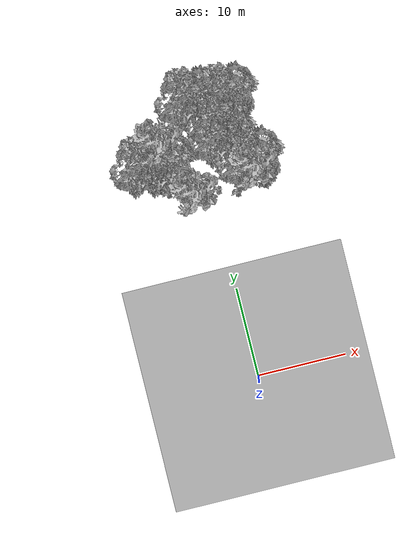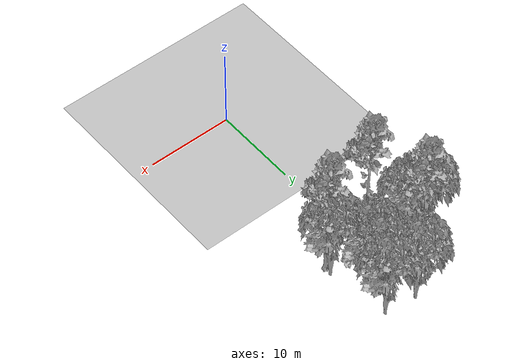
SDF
<sdf version="1.7">
 <world name="default">
  <model name="ground_plane">
   <static>1</static>
   <link name="link">
    <collision name="collision">
     <pose>-50 0 0 0 -0 0</pose>
     <geometry><plane><normal>0 0 1</normal><size>80 80</size></plane></geometry>
     <surface><contact><ode><min_depth>0.01</min_depth><max_vel>0</max_vel></ode></contact></surface>
    </collision>
    <visual name="grass">
     <cast_shadows>0</cast_shadows>
     <geometry>
      <mesh>
       <scale>0.46714285714285714 0.46714285714285714 0.1</scale>
       <uri>file://grass_plane/meshes/grass_plane.dae</uri>
      </mesh>
     </geometry>
    </visual>
   </link>
  </model>
  <model name="Tree 5">
   <static>1</static>
   <pose>2.541199263562561 26.002486133638797 0 1.57079 -0 0</pose>
   <link name="link">
    <collision name="collision">
     <geometry><mesh><scale>3.5 5 3.5</scale><uri>model://tree_2/meshes/tree_2.obj</uri></mesh></geometry>
    </collision>
    <visual name="visual">
     <geometry><mesh><scale>3.5 5 3.5</scale><uri>model://tree_2/meshes/tree_2.obj</uri></mesh></geometry>
    </visual>
   </link>
  </model>
  <model name="Tree 65">
   <static>1</static>
   <pose>-4.063070890270268 26.344671352374874 0 1.57079 -0 0</pose>
   <link name="link">
    <collision name="collision">
     <geometry><mesh><scale>3.5 5 3.5</scale><uri>model://tree_9/meshes/tree_9.obj</uri></mesh></geometry>
    </collision>
    <visual name="visual">
     <geometry><mesh><scale>3.5 5 3.5</scale><uri>model://tree_9/meshes/tree_9.obj</uri></mesh></geometry>
    </visual>
   </link>
  </model>
  <model name="Tree 167">
   <static>1</static>
   <pose>3.7886696312940416 30.106309077595185 0 1.57079 -0 0</pose>
   <link name="link">
    <collision name="collision">
     <geometry><mesh><scale>3.5 5 3.5</scale><uri>model://tree_2/meshes/tree_2.obj</uri></mesh></geometry>
    </collision>
    <visual name="visual">
     <geometry><mesh><scale>3.5 5 3.5</scale><uri>model://tree_2/meshes/tree_2.obj</uri></mesh></geometry>
    </visual>
   </link>
  </model>
  <model name="Tree 181">
   <static>1</static>
   <pose>2.614174558890447 27.958032820090295 0 1.57079 -0 0</pose>
   <link name="link">
    <collision name="collision">
     <geometry><mesh><scale>3.5 5 3.5</scale><uri>model://tree_2/meshes/tree_2.obj</uri></mesh></geometry>
    </collision>
    <visual name="visual">
     <geometry><mesh><scale>3.5 5 3.5</scale><uri>model://tree_2/meshes/tree_2.obj</uri></mesh></geometry>
    </visual>
   </link>
  </model>
  <model name="Tree 183">
   <static>1</static>
   <pose>0.12396597526274888 30.573091209536415 0 1.57079 -0 0</pose>
   <link name="link">
    <collision name="collision">
     <geometry><mesh><scale>3.5 5 3.5</scale><uri>model://tree_2/meshes/tree_2.obj</uri></mesh></geometry>
    </collision>
    <visual name="visual">
     <geometry><mesh><scale>3.5 5 3.5</scale><uri>model://tree_2/meshes/tree_2.obj</uri></mesh></geometry>
    </visual>
   </link>
  </model>
  <model name="Tree 186">
   <static>1</static>
   <pose>-6.068906211879714 24.888237485663723 0 1.57079 -0 0</pose>
   <link name="link">
    <collision name="collision">
     <geometry><mesh><scale>3.5 5 3.5</scale><uri>model://tree_2/meshes/tree_2.obj</uri></mesh></geometry>
    </collision>
    <visual name="visual">
     <geometry><mesh><scale>3.5 5 3.5</scale><uri>model://tree_2/meshes/tree_2.obj</uri></mesh></geometry>
    </visual>
   </link>
  </model>
  <model name="Tree 327">
   <static>1</static>
   <pose>4.597444722207847 21.828376051241534 0 1.57079 -0 0</pose>
   <link name="link">
    <collision name="collision">
     <geometry><mesh><scale>3.5 5 3.5</scale><uri>model://tree_9/meshes/tree_9.obj</uri></mesh></geometry>
    </collision>
    <visual name="visual">
     <geometry><mesh><scale>3.5 5 3.5</scale><uri>model://tree_9/meshes/tree_9.obj</uri></mesh></geometry>
    </visual>
   </link>
  </model>
  <model name="Tree 351">
   <static>1</static>
   <pose>-4.11728415330208 24.51464135056544 0 1.57079 -0 0</pose>
   <link name="link">
    <collision name="collision">
     <geometry><mesh><scale>3.5 5 3.5</scale><uri>model://tree_2/meshes/tree_2.obj</uri></mesh></geometry>
    </collision>
    <visual name="visual">
     <geometry><mesh><scale>3.5 5 3.5</scale><uri>model://tree_2/meshes/tree_2.obj</uri></mesh></geometry>
    </visual>
   </link>
  </model>
  <model name="Tree 506">
   <static>1</static>
   <pose>4.830327032825167 22.942880569228457 0 1.57079 -0 0</pose>
   <link name="link">
    <collision name="collision">
     <geometry><mesh><scale>3.5 5 3.5</scale><uri>model://tree_2/meshes/tree_2.obj</uri></mesh></geometry>
    </collision>
    <visual name="visual">
     <geometry><mesh><scale>3.5 5 3.5</scale><uri>model://tree_2/meshes/tree_2.obj</uri></mesh></geometry>
    </visual>
   </link>
  </model>
  <model name="Tree 555">
   <static>1</static>
   <pose>-1.7842016796451006 20.721535748117425 0 1.57079 -0 0</pose>
   <link name="link">
    <collision name="collision">
     <geometry><mesh><scale>3.5 5 3.5</scale><uri>model://tree_9/meshes/tree_9.obj</uri></mesh></geometry>
    </collision>
    <visual name="visual">
     <geometry><mesh><scale>3.5 5 3.5</scale><uri>model://tree_9/meshes/tree_9.obj</uri></mesh></geometry>
    </visual>
   </link>
  </model>
  <model name="Bush 7">
   <static>1</static>
   <pose>-4.5042462058485455 23.462716821325884 0 1.57079 -0 0</pose>
   <link name="link">
    <collision name="collision">
     <geometry><mesh><scale>2 2 2</scale><uri>model://bush_2/meshes/bush_2.obj</uri></mesh></geometry>
     <surface><contact><collide_without_contact>false</collide_without_contact></contact></surface>
    </collision>
    <visual name="visual">
     <geometry><mesh><scale>2 2 2</scale><uri>model://bush_2/meshes/bush_2.obj</uri></mesh></geometry>
    </visual>
   </link>
  </model>
  <model name="Bush 170">
   <static>1</static>
   <pose>-6.142239156432375 28.872120043894697 0 1.57079 -0 0</pose>
   <link name="link">
    <collision name="collision">
     <geometry><mesh><scale>2 2 2</scale><uri>model://bush_2/meshes/bush_2.obj</uri></mesh></geometry>
     <surface><contact><collide_without_contact>false</collide_without_contact></contact></surface>
    </collision>
    <visual name="visual">
     <geometry><mesh><scale>2 2 2</scale><uri>model://bush_2/meshes/bush_2.obj</uri></mesh></geometry>
    </visual>
   </link>
  </model>
  <model name="Bush 188">
   <static>1</static>
   <pose>0.5278341826342086 21.194731750973773 0 1.57079 -0 0</pose>
   <link name="link">
    <collision name="collision">
     <geometry><mesh><scale>2 2 2</scale><uri>model://bush_2/meshes/bush_2.obj</uri></mesh></geometry>
     <surface><contact><collide_without_contact>false</collide_without_contact></contact></surface>
    </collision>
    <visual name="visual">
     <geometry><mesh><scale>2 2 2</scale><uri>model://bush_2/meshes/bush_2.obj</uri></mesh></geometry>
    </visual>
   </link>
  </model>
  <model name="Bush 225">
   <static>1</static>
   <pose>-2.7805043515334873 21.481327434769348 0 1.57079 -0 0</pose>
   <link name="link">
    <collision name="collision">
     <geometry><mesh><scale>2 2 2</scale><uri>model://bush_2/meshes/bush_2.obj</uri></mesh></geometry>
     <surface><contact><collide_without_contact>false</collide_without_contact></contact></surface>
    </collision>
    <visual name="visual">
     <geometry><mesh><scale>2 2 2</scale><uri>model://bush_2/meshes/bush_2.obj</uri></mesh></geometry>
    </visual>
   </link>
  </model>
  <model name="Bush 284">
   <static>1</static>
   <pose>-5.4778696018289565 26.011223657302025 0 1.57079 -0 0</pose>
   <link name="link">
    <collision name="collision">
     <geometry><mesh><scale>2 2 2</scale><uri>model://bush_2/meshes/bush_2.obj</uri></mesh></geometry>
     <surface><contact><collide_without_contact>false</collide_without_contact></contact></surface>
    </collision>
    <visual name="visual">
     <geometry><mesh><scale>2 2 2</scale><uri>model://bush_2/meshes/bush_2.obj</uri></mesh></geometry>
    </visual>
   </link>
  </model>
  <model name="Bush 291">
   <static>1</static>
   <pose>-0.7575715153770446 20.85325771108684 0 1.57079 -0 0</pose>
   <link name="link">
    <collision name="collision">
     <geometry><mesh><scale>2 2 2</scale><uri>model://bush_2/meshes/bush_2.obj</uri></mesh></geometry>
     <surface><contact><collide_without_contact>false</collide_without_contact></contact></surface>
    </collision>
    <visual name="visual">
     <geometry><mesh><scale>2 2 2</scale><uri>model://bush_2/meshes/bush_2.obj</uri></mesh></geometry>
    </visual>
   </link>
  </model>
  <model name="Bush 334">
   <static>1</static>
   <pose>2.588542399221957 20.39256120691511 0 1.57079 -0 0</pose>
   <link name="link">
    <collision name="collision">
     <geometry><mesh><scale>2 2 2</scale><uri>model://bush_2/meshes/bush_2.obj</uri></mesh></geometry>
     <surface><contact><collide_without_contact>false</collide_without_contact></contact></surface>
    </collision>
    <visual name="visual">
     <geometry><mesh><scale>2 2 2</scale><uri>model://bush_2/meshes/bush_2.obj</uri></mesh></geometry>
    </visual>
   </link>
  </model>
  <model name="Bush 413">
   <static>1</static>
   <pose>-2.1728020979415135 29.884198276993857 0 1.57079 -0 0</pose>
   <link name="link">
    <collision name="collision">
     <geometry><mesh><scale>2 2 2</scale><uri>model://bush_5/meshes/bush_5.obj</uri></mesh></geometry>
     <surface><contact><collide_without_contact>false</collide_without_contact></contact></surface>
    </collision>
    <visual name="visual">
     <geometry><mesh><scale>2 2 2</scale><uri>model://bush_5/meshes/bush_5.obj</uri></mesh></geometry>
    </visual>
   </link>
  </model>
  <model name="Bush 457">
   <static>1</static>
   <pose>-2.8944011275539125 24.67074571103008 0 1.57079 -0 0</pose>
   <link name="link">
    <collision name="collision">
     <geometry><mesh><scale>2 2 2</scale><uri>model://bush_2/meshes/bush_2.obj</uri></mesh></geometry>
     <surface><contact><collide_without_contact>false</collide_without_contact></contact></surface>
    </collision>
    <visual name="visual">
     <geometry><mesh><scale>2 2 2</scale><uri>model://bush_2/meshes/bush_2.obj</uri></mesh></geometry>
    </visual>
   </link>
  </model>
  <model name="Bush 469">
   <static>1</static>
   <pose>2.71386371102799 23.120463519993933 0 1.57079 -0 0</pose>
   <link name="link">
    <collision name="collision">
     <geometry><mesh><scale>2 2 2</scale><uri>model://bush_1/meshes/bush_1.obj</uri></mesh></geometry>
     <surface><contact><collide_without_contact>false</collide_without_contact></contact></surface>
    </collision>
    <visual name="visual">
     <geometry><mesh><scale>2 2 2</scale><uri>model://bush_1/meshes/bush_1.obj</uri></mesh></geometry>
    </visual>
   </link>
  </model>
  <model name="Bush 500">
   <static>1</static>
   <pose>-3.8883910900649354 28.95575845882196 0 1.57079 -0 0</pose>
   <link name="link">
    <collision name="collision">
     <geometry><mesh><scale>2 2 2</scale><uri>model://bush_2/meshes/bush_2.obj</uri></mesh></geometry>
     <surface><contact><collide_without_contact>false</collide_without_contact></contact></surface>
    </collision>
    <visual name="visual">
     <geometry><mesh><scale>2 2 2</scale><uri>model://bush_2/meshes/bush_2.obj</uri></mesh></geometry>
    </visual>
   </link>
  </model>
  <model name="Bush 532">
   <static>1</static>
   <pose>-4.934083319994933 22.089124562974447 0 1.57079 -0 0</pose>
   <link name="link">
    <collision name="collision">
     <geometry><mesh><scale>2 2 2</scale><uri>model://bush_2/meshes/bush_2.obj</uri></mesh></geometry>
     <surface><contact><collide_without_contact>false</collide_without_contact></contact></surface>
    </collision>
    <visual name="visual">
     <geometry><mesh><scale>2 2 2</scale><uri>model://bush_2/meshes/bush_2.obj</uri></mesh></geometry>
    </visual>
   </link>
  </model>
  <model name="Bush 555">
   <static>1</static>
   <pose>-2.9553032831304478 28.560767041489726 0 1.57079 -0 0</pose>
   <link name="link">
    <collision name="collision">
     <geometry><mesh><scale>2 2 2</scale><uri>model://bush_2/meshes/bush_2.obj</uri></mesh></geometry>
     <surface><contact><collide_without_contact>false</collide_without_contact></contact></surface>
    </collision>
    <visual name="visual">
     <geometry><mesh><scale>2 2 2</scale><uri>model://bush_2/meshes/bush_2.obj</uri></mesh></geometry>
    </visual>
   </link>
  </model>
 </world>
</sdf>
